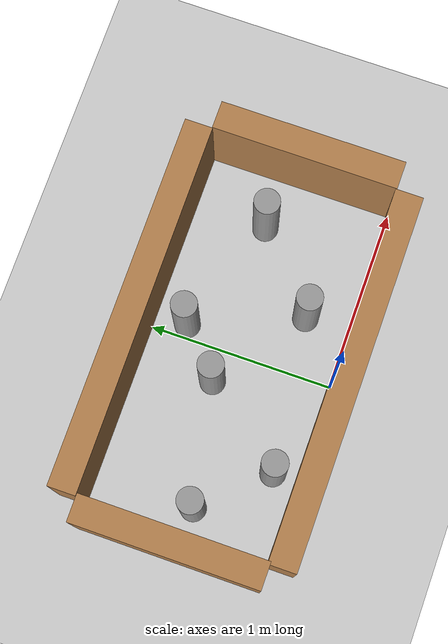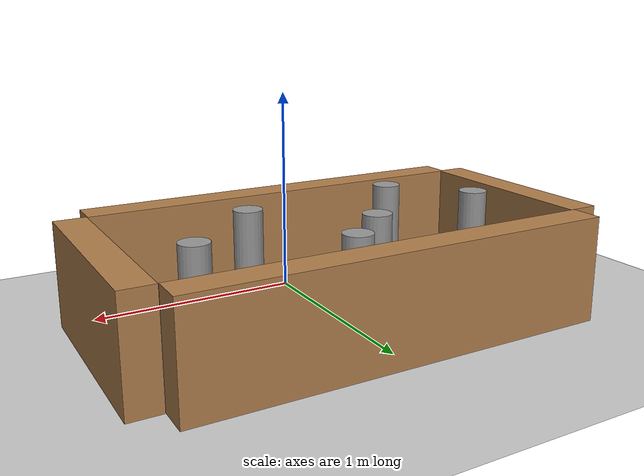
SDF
<sdf version="1.6">
 <world name="default">
  <light name="sun" type="directional">
   <pose>0 0 10 0 -0 0</pose>
   <diffuse>0.8 0.8 0.8 1</diffuse>
   <specular>0.1 0.1 0.1 1</specular>
   <attenuation>
    <range>1000</range>
    <constant>0.9</constant>
    <linear>0.01</linear>
    <quadratic>0.001</quadratic>
   </attenuation>
   <direction>-0.5 0.5 -1</direction>
  </light>
  <model name="ground_plane">
   <static>1</static>
   <link name="link">
    <collision name="collision">
     <geometry><plane><normal>0 0 1</normal><size>100 100</size></plane></geometry>
     <surface><friction><ode><mu>100</mu><mu2>50</mu2></ode></friction></surface>
    </collision>
    <visual name="visual">
     <cast_shadows>0</cast_shadows>
     <geometry><plane><normal>0 0 1</normal><size>100 100</size></plane></geometry>
     <material>
      <script><uri>file://media/materials/scripts/gazebo.material</uri><name>Gazebo/Grey</name></script>
     </material>
    </visual>
   </link>
  </model>
  <physics name="default_physics" default="0" type="ode">
   <real_time_update_rate>1000</real_time_update_rate>
   <max_step_size>0.001</max_step_size>
   <real_time_factor>1</real_time_factor>
   <ode>
    <solver>
     <type>quick</type>
     <iters>150</iters>
     <precon_iters>0</precon_iters>
     <sor>1.4</sor>
     <use_dynamic_moi_rescaling>1</use_dynamic_moi_rescaling>
    </solver>
    <constraints>
     <cfm>1e-05</cfm>
     <erp>0.2</erp>
     <contact_max_correcting_vel>2000</contact_max_correcting_vel>
     <contact_surface_layer>0.01</contact_surface_layer>
    </constraints>
   </ode>
  </physics>
  <scene><ambient>0.4 0.4 0.4 1</ambient><background>0.7 0.7 0.7 1</background><shadows>1</shadows></scene>
  <gravity>0 0 -9.8</gravity>
  <magnetic_field>6e-06 2.3e-05 -4.2e-05</magnetic_field>
  <atmosphere type="adiabatic"/>
  <spherical_coordinates>
   <surface_model>EARTH_WGS84</surface_model>
   <latitude_deg>0</latitude_deg>
   <longitude_deg>0</longitude_deg>
   <elevation>0</elevation>
   <heading_deg>0</heading_deg>
  </spherical_coordinates>
  <model name="turtlebot3_square_0">
   <link name="Wall_0">
    <pose>-0.004631 1.07537 0 0 -0 0</pose>
    <inertial>
     <mass>1</mass>
     <inertia><ixx>1</ixx><ixy>0</ixy><ixz>0</ixz><iyy>1</iyy><iyz>0</iyz><izz>1</izz></inertia>
    </inertial>
    <visual name="Wall_0_Visual">
     <pose>0 0 0.25 0 -0 0</pose>
     <geometry><box><size>2 0.15 0.5</size></box></geometry>
     <material>
      <script><uri>file://media/materials/scripts/gazebo.material</uri><name>Gazebo/Wood</name></script>
      <ambient>1 1 1 1</ambient>
      <diffuse>1 1 1 1</diffuse>
      <specular>0.2 0.2 0.2 1</specular>
      <emissive>0 0 0 1</emissive>
      <shader type="vertex"><normal_map>__default__</normal_map></shader>
     </material>
    </visual>
    <collision name="Wall_0_Collision">
     <pose>0 0 0.25 0 -0 0</pose>
     <geometry><box><size>2 0.15 0.5</size></box></geometry>
     <surface>
      <friction>
       <ode><mu>1</mu><mu2>1</mu2><fdir1>0 0 0</fdir1><slip1>0</slip1><slip2>0</slip2></ode>
       <torsional>
        <coefficient>1</coefficient>
        <patch_radius>0</patch_radius>
        <surface_radius>0</surface_radius>
        <use_patch_radius>1</use_patch_radius>
        <ode><slip>0</slip></ode>
       </torsional>
      </friction>
      <bounce><restitution_coefficient>0</restitution_coefficient><threshold>1e+06</threshold></bounce>
      <contact>
       <collide_without_contact>0</collide_without_contact>
       <collide_without_contact_bitmask>1</collide_without_contact_bitmask>
       <collide_bitmask>1</collide_bitmask>
       <ode>
        <soft_cfm>0</soft_cfm>
        <soft_erp>0.2</soft_erp>
        <kp>1e+13</kp>
        <kd>1</kd>
        <max_vel>0.01</max_vel>
        <min_depth>0</min_depth>
       </ode>
       <bullet>
        <split_impulse>1</split_impulse>
        <split_impulse_penetration_threshold>-0.01</split_impulse_penetration_threshold>
        <soft_cfm>0</soft_cfm>
        <soft_erp>0.2</soft_erp>
        <kp>1e+13</kp>
        <kd>1</kd>
       </bullet>
      </contact>
     </surface>
    </collision>
   </link>
   <link name="Wall_2">
    <pose>-1.06231 0.49864 0 0 0 -1.5708</pose>
    <inertial>
     <mass>1</mass>
     <inertia><ixx>1</ixx><ixy>0</ixy><ixz>0</ixz><iyy>1</iyy><iyz>0</iyz><izz>1</izz></inertia>
    </inertial>
    <visual name="Wall_2_Visual">
     <pose>0 0 0.25 0 -0 0</pose>
     <geometry><box><size>1 0.15 0.5</size></box></geometry>
     <material>
      <script><uri>file://media/materials/scripts/gazebo.material</uri><name>Gazebo/Wood</name></script>
      <ambient>1 1 1 1</ambient>
      <diffuse>1 1 1 1</diffuse>
      <specular>0.2 0.2 0.2 1</specular>
      <emissive>0 0 0 1</emissive>
      <shader type="vertex"><normal_map>__default__</normal_map></shader>
     </material>
    </visual>
    <collision name="Wall_2_Collision">
     <pose>0 0 0.25 0 -0 0</pose>
     <geometry><box><size>1 0.15 0.5</size></box></geometry>
     <surface>
      <friction>
       <ode><mu>1</mu><mu2>1</mu2><fdir1>0 0 0</fdir1><slip1>0</slip1><slip2>0</slip2></ode>
       <torsional>
        <coefficient>1</coefficient>
        <patch_radius>0</patch_radius>
        <surface_radius>0</surface_radius>
        <use_patch_radius>1</use_patch_radius>
        <ode><slip>0</slip></ode>
       </torsional>
      </friction>
      <bounce><restitution_coefficient>0</restitution_coefficient><threshold>1e+06</threshold></bounce>
      <contact>
       <collide_without_contact>0</collide_without_contact>
       <collide_without_contact_bitmask>1</collide_without_contact_bitmask>
       <collide_bitmask>1</collide_bitmask>
       <ode>
        <soft_cfm>0</soft_cfm>
        <soft_erp>0.2</soft_erp>
        <kp>1e+13</kp>
        <kd>1</kd>
        <max_vel>0.01</max_vel>
        <min_depth>0</min_depth>
       </ode>
       <bullet>
        <split_impulse>1</split_impulse>
        <split_impulse_penetration_threshold>-0.01</split_impulse_penetration_threshold>
        <soft_cfm>0</soft_cfm>
        <soft_erp>0.2</soft_erp>
        <kp>1e+13</kp>
        <kd>1</kd>
       </bullet>
      </contact>
     </surface>
    </collision>
   </link>
   <link name="Wall_3">
    <pose>-0.005226 -0.063377 0 0 -0 0</pose>
    <inertial>
     <mass>1</mass>
     <inertia><ixx>1</ixx><ixy>0</ixy><ixz>0</ixz><iyy>1</iyy><iyz>0</iyz><izz>1</izz></inertia>
    </inertial>
    <visual name="Wall_3_Visual">
     <pose>0 0 0.25 0 -0 0</pose>
     <geometry><box><size>2 0.15 0.5</size></box></geometry>
     <material>
      <script><uri>file://media/materials/scripts/gazebo.material</uri><name>Gazebo/Wood</name></script>
      <ambient>1 1 1 1</ambient>
      <diffuse>1 1 1 1</diffuse>
      <specular>0.2 0.2 0.2 1</specular>
      <emissive>0 0 0 1</emissive>
      <shader type="vertex"><normal_map>__default__</normal_map></shader>
     </material>
    </visual>
    <collision name="Wall_3_Collision">
     <pose>0 0 0.25 0 -0 0</pose>
     <geometry><box><size>2 0.15 0.5</size></box></geometry>
     <surface>
      <friction>
       <ode><mu>1</mu><mu2>1</mu2><fdir1>0 0 0</fdir1><slip1>0</slip1><slip2>0</slip2></ode>
       <torsional>
        <coefficient>1</coefficient>
        <patch_radius>0</patch_radius>
        <surface_radius>0</surface_radius>
        <use_patch_radius>1</use_patch_radius>
        <ode><slip>0</slip></ode>
       </torsional>
      </friction>
      <bounce><restitution_coefficient>0</restitution_coefficient><threshold>1e+06</threshold></bounce>
      <contact>
       <collide_without_contact>0</collide_without_contact>
       <collide_without_contact_bitmask>1</collide_without_contact_bitmask>
       <collide_bitmask>1</collide_bitmask>
       <ode>
        <soft_cfm>0</soft_cfm>
        <soft_erp>0.2</soft_erp>
        <kp>1e+13</kp>
        <kd>1</kd>
        <max_vel>0.01</max_vel>
        <min_depth>0</min_depth>
       </ode>
       <bullet>
        <split_impulse>1</split_impulse>
        <split_impulse_penetration_threshold>-0.01</split_impulse_penetration_threshold>
        <soft_cfm>0</soft_cfm>
        <soft_erp>0.2</soft_erp>
        <kp>1e+13</kp>
        <kd>1</kd>
       </bullet>
      </contact>
     </surface>
    </collision>
   </link>
   <link name="Wall_4">
    <pose>1.0729 0.503947 0 0 -0 1.5708</pose>
    <inertial>
     <mass>1</mass>
     <inertia><ixx>1</ixx><ixy>0</ixy><ixz>0</ixz><iyy>1</iyy><iyz>0</iyz><izz>1</izz></inertia>
    </inertial>
    <visual name="Wall_4_Visual">
     <pose>0 0 0.25 0 -0 0</pose>
     <geometry><box><size>1 0.15 0.5</size></box></geometry>
     <material>
      <script><uri>file://media/materials/scripts/gazebo.material</uri><name>Gazebo/Wood</name></script>
      <ambient>1 1 1 1</ambient>
      <diffuse>1 1 1 1</diffuse>
      <specular>0.2 0.2 0.2 1</specular>
      <emissive>0 0 0 1</emissive>
      <shader type="vertex"><normal_map>__default__</normal_map></shader>
     </material>
    </visual>
    <collision name="Wall_4_Collision">
     <pose>0 0 0.25 0 -0 0</pose>
     <geometry><box><size>1 0.15 0.5</size></box></geometry>
     <surface>
      <friction>
       <ode><mu>1</mu><mu2>1</mu2><fdir1>0 0 0</fdir1><slip1>0</slip1><slip2>0</slip2></ode>
       <torsional>
        <coefficient>1</coefficient>
        <patch_radius>0</patch_radius>
        <surface_radius>0</surface_radius>
        <use_patch_radius>1</use_patch_radius>
        <ode><slip>0</slip></ode>
       </torsional>
      </friction>
      <bounce><restitution_coefficient>0</restitution_coefficient><threshold>1e+06</threshold></bounce>
      <contact>
       <collide_without_contact>0</collide_without_contact>
       <collide_without_contact_bitmask>1</collide_without_contact_bitmask>
       <collide_bitmask>1</collide_bitmask>
       <ode>
        <soft_cfm>0</soft_cfm>
        <soft_erp>0.2</soft_erp>
        <kp>1e+13</kp>
        <kd>1</kd>
        <max_vel>0.01</max_vel>
        <min_depth>0</min_depth>
       </ode>
       <bullet>
        <split_impulse>1</split_impulse>
        <split_impulse_penetration_threshold>-0.01</split_impulse_penetration_threshold>
        <soft_cfm>0</soft_cfm>
        <soft_erp>0.2</soft_erp>
        <kp>1e+13</kp>
        <kd>1</kd>
       </bullet>
      </contact>
     </surface>
    </collision>
   </link>
   <static>1</static>
  </model>
  <model name="unit_cylinder_0_0">
   <link name="link">
    <pose>-0.579199 -1.40579 -0.254355 0 -0 0</pose>
    <inertial>
     <mass>1</mass>
     <inertia><ixx>0.145833</ixx><ixy>0</ixy><ixz>0</ixz><iyy>0.145833</iyy><iyz>0</iyz><izz>0.125</izz></inertia>
    </inertial>
    <visual name="visual">
     <geometry><cylinder><radius>0.07</radius><length>0.5</length></cylinder></geometry>
     <material>
      <script><name>Gazebo/Grey</name><uri>file://media/materials/scripts/gazebo.material</uri></script>
      <ambient>0.3 0.3 0.3 1</ambient>
      <diffuse>0.7 0.7 0.7 1</diffuse>
      <specular>0.01 0.01 0.01 1</specular>
      <emissive>0 0 0 1</emissive>
      <shader type="vertex"><normal_map>__default__</normal_map></shader>
     </material>
    </visual>
    <collision name="collision">
     <geometry><cylinder><radius>0.07</radius><length>0.5</length></cylinder></geometry>
     <surface>
      <friction>
       <ode><mu>1</mu><mu2>1</mu2><fdir1>0 0 0</fdir1><slip1>0</slip1><slip2>0</slip2></ode>
       <torsional>
        <coefficient>1</coefficient>
        <patch_radius>0</patch_radius>
        <surface_radius>0</surface_radius>
        <use_patch_radius>1</use_patch_radius>
        <ode><slip>0</slip></ode>
       </torsional>
      </friction>
      <bounce><restitution_coefficient>0</restitution_coefficient><threshold>1e+06</threshold></bounce>
      <contact>
       <collide_without_contact>0</collide_without_contact>
       <collide_without_contact_bitmask>1</collide_without_contact_bitmask>
       <collide_bitmask>1</collide_bitmask>
       <ode>
        <soft_cfm>0</soft_cfm>
        <soft_erp>0.2</soft_erp>
        <kp>1e+13</kp>
        <kd>1</kd>
        <max_vel>0.01</max_vel>
        <min_depth>0</min_depth>
       </ode>
       <bullet>
        <split_impulse>1</split_impulse>
        <split_impulse_penetration_threshold>-0.01</split_impulse_penetration_threshold>
        <soft_cfm>0</soft_cfm>
        <soft_erp>0.2</soft_erp>
        <kp>1e+13</kp>
        <kd>1</kd>
       </bullet>
      </contact>
     </surface>
    </collision>
   </link>
   <link name="link_clone">
    <pose>-0.092564 -1.76127 -0.253571 0 -0 0</pose>
    <inertial>
     <mass>1</mass>
     <inertia><ixx>0.145833</ixx><ixy>0</ixy><ixz>0</ixz><iyy>0.145833</iyy><iyz>0</iyz><izz>0.125</izz></inertia>
    </inertial>
    <visual name="visual">
     <geometry><cylinder><radius>0.07</radius><length>0.5</length></cylinder></geometry>
     <material>
      <script><name>Gazebo/Grey</name><uri>file://media/materials/scripts/gazebo.material</uri></script>
      <ambient>0.3 0.3 0.3 1</ambient>
      <diffuse>0.7 0.7 0.7 1</diffuse>
      <specular>0.01 0.01 0.01 1</specular>
      <emissive>0 0 0 1</emissive>
      <shader type="vertex"><normal_map>__default__</normal_map></shader>
     </material>
    </visual>
    <collision name="collision">
     <geometry><cylinder><radius>0.07</radius><length>0.5</length></cylinder></geometry>
     <surface>
      <friction>
       <ode><mu>1</mu><mu2>1</mu2><fdir1>0 0 0</fdir1><slip1>0</slip1><slip2>0</slip2></ode>
       <torsional>
        <coefficient>1</coefficient>
        <patch_radius>0</patch_radius>
        <surface_radius>0</surface_radius>
        <use_patch_radius>1</use_patch_radius>
        <ode><slip>0</slip></ode>
       </torsional>
      </friction>
      <bounce><restitution_coefficient>0</restitution_coefficient><threshold>1e+06</threshold></bounce>
      <contact>
       <collide_without_contact>0</collide_without_contact>
       <collide_without_contact_bitmask>1</collide_without_contact_bitmask>
       <collide_bitmask>1</collide_bitmask>
       <ode>
        <soft_cfm>0</soft_cfm>
        <soft_erp>0.2</soft_erp>
        <kp>1e+13</kp>
        <kd>1</kd>
        <max_vel>0.01</max_vel>
        <min_depth>0</min_depth>
       </ode>
       <bullet>
        <split_impulse>1</split_impulse>
        <split_impulse_penetration_threshold>-0.01</split_impulse_penetration_threshold>
        <soft_cfm>0</soft_cfm>
        <soft_erp>0.2</soft_erp>
        <kp>1e+13</kp>
        <kd>1</kd>
       </bullet>
      </contact>
     </surface>
    </collision>
   </link>
   <link name="link_clone_clone">
    <pose>-0.937385 -1.86708 -0.25279 0 -0 0</pose>
    <inertial>
     <mass>1</mass>
     <inertia><ixx>0.145833</ixx><ixy>0</ixy><ixz>0</ixz><iyy>0.145833</iyy><iyz>0</iyz><izz>0.125</izz></inertia>
    </inertial>
    <visual name="visual">
     <geometry><cylinder><radius>0.07</radius><length>0.5</length></cylinder></geometry>
     <material>
      <script><name>Gazebo/Grey</name><uri>file://media/materials/scripts/gazebo.material</uri></script>
      <ambient>0.3 0.3 0.3 1</ambient>
      <diffuse>0.7 0.7 0.7 1</diffuse>
      <specular>0.01 0.01 0.01 1</specular>
      <emissive>0 0 0 1</emissive>
      <shader type="vertex"><normal_map>__default__</normal_map></shader>
     </material>
    </visual>
    <collision name="collision">
     <geometry><cylinder><radius>0.07</radius><length>0.5</length></cylinder></geometry>
     <surface>
      <friction>
       <ode><mu>1</mu><mu2>1</mu2><fdir1>0 0 0</fdir1><slip1>0</slip1><slip2>0</slip2></ode>
       <torsional>
        <coefficient>1</coefficient>
        <patch_radius>0</patch_radius>
        <surface_radius>0</surface_radius>
        <use_patch_radius>1</use_patch_radius>
        <ode><slip>0</slip></ode>
       </torsional>
      </friction>
      <bounce><restitution_coefficient>0</restitution_coefficient><threshold>1e+06</threshold></bounce>
      <contact>
       <collide_without_contact>0</collide_without_contact>
       <collide_without_contact_bitmask>1</collide_without_contact_bitmask>
       <collide_bitmask>1</collide_bitmask>
       <ode>
        <soft_cfm>0</soft_cfm>
        <soft_erp>0.2</soft_erp>
        <kp>1e+13</kp>
        <kd>1</kd>
        <max_vel>0.01</max_vel>
        <min_depth>0</min_depth>
       </ode>
       <bullet>
        <split_impulse>1</split_impulse>
        <split_impulse_penetration_threshold>-0.01</split_impulse_penetration_threshold>
        <soft_cfm>0</soft_cfm>
        <soft_erp>0.2</soft_erp>
        <kp>1e+13</kp>
        <kd>1</kd>
       </bullet>
      </contact>
     </surface>
    </collision>
   </link>
   <link name="link_clone_clone_0">
    <pose>0.31093 -1.39506 -0.253571 0 -0 0</pose>
    <inertial>
     <mass>1</mass>
     <inertia><ixx>0.145833</ixx><ixy>0</ixy><ixz>0</ixz><iyy>0.145833</iyy><iyz>0</iyz><izz>0.125</izz></inertia>
    </inertial>
    <visual name="visual">
     <geometry><cylinder><radius>0.07</radius><length>0.5</length></cylinder></geometry>
     <material>
      <script><name>Gazebo/Grey</name><uri>file://media/materials/scripts/gazebo.material</uri></script>
      <ambient>0.3 0.3 0.3 1</ambient>
      <diffuse>0.7 0.7 0.7 1</diffuse>
      <specular>0.01 0.01 0.01 1</specular>
      <emissive>0 0 0 1</emissive>
      <shader type="vertex"><normal_map>__default__</normal_map></shader>
     </material>
    </visual>
    <collision name="collision">
     <geometry><cylinder><radius>0.07</radius><length>0.5</length></cylinder></geometry>
     <surface>
      <friction>
       <ode><mu>1</mu><mu2>1</mu2><fdir1>0 0 0</fdir1><slip1>0</slip1><slip2>0</slip2></ode>
       <torsional>
        <coefficient>1</coefficient>
        <patch_radius>0</patch_radius>
        <surface_radius>0</surface_radius>
        <use_patch_radius>1</use_patch_radius>
        <ode><slip>0</slip></ode>
       </torsional>
      </friction>
      <bounce><restitution_coefficient>0</restitution_coefficient><threshold>1e+06</threshold></bounce>
      <contact>
       <collide_without_contact>0</collide_without_contact>
       <collide_without_contact_bitmask>1</collide_without_contact_bitmask>
       <collide_bitmask>1</collide_bitmask>
       <ode>
        <soft_cfm>0</soft_cfm>
        <soft_erp>0.2</soft_erp>
        <kp>1e+13</kp>
        <kd>1</kd>
        <max_vel>0.01</max_vel>
        <min_depth>0</min_depth>
       </ode>
       <bullet>
        <split_impulse>1</split_impulse>
        <split_impulse_penetration_threshold>-0.01</split_impulse_penetration_threshold>
        <soft_cfm>0</soft_cfm>
        <soft_erp>0.2</soft_erp>
        <kp>1e+13</kp>
        <kd>1</kd>
       </bullet>
      </contact>
     </surface>
    </collision>
   </link>
   <link name="link_clone_clone_0_clone_0">
    <pose>-1.24598 -1.53509 -0.253571 0 -0 0</pose>
    <inertial>
     <mass>1</mass>
     <inertia><ixx>0.145833</ixx><ixy>0</ixy><ixz>0</ixz><iyy>0.145833</iyy><iyz>0</iyz><izz>0.125</izz></inertia>
    </inertial>
    <visual name="visual">
     <geometry><cylinder><radius>0.07</radius><length>0.5</length></cylinder></geometry>
     <material>
      <script><name>Gazebo/Grey</name><uri>file://media/materials/scripts/gazebo.material</uri></script>
      <ambient>0.3 0.3 0.3 1</ambient>
      <diffuse>0.7 0.7 0.7 1</diffuse>
      <specular>0.01 0.01 0.01 1</specular>
      <emissive>0 0 0 1</emissive>
      <shader type="vertex"><normal_map>__default__</normal_map></shader>
     </material>
    </visual>
    <collision name="collision">
     <geometry><cylinder><radius>0.07</radius><length>0.5</length></cylinder></geometry>
     <surface>
      <friction>
       <ode><mu>1</mu><mu2>1</mu2><fdir1>0 0 0</fdir1><slip1>0</slip1><slip2>0</slip2></ode>
       <torsional>
        <coefficient>1</coefficient>
        <patch_radius>0</patch_radius>
        <surface_radius>0</surface_radius>
        <use_patch_radius>1</use_patch_radius>
        <ode><slip>0</slip></ode>
       </torsional>
      </friction>
      <bounce><restitution_coefficient>0</restitution_coefficient><threshold>1e+06</threshold></bounce>
      <contact>
       <collide_without_contact>0</collide_without_contact>
       <collide_without_contact_bitmask>1</collide_without_contact_bitmask>
       <collide_bitmask>1</collide_bitmask>
       <ode>
        <soft_cfm>0</soft_cfm>
        <soft_erp>0.2</soft_erp>
        <kp>1e+13</kp>
        <kd>1</kd>
        <max_vel>0.01</max_vel>
        <min_depth>0</min_depth>
       </ode>
       <bullet>
        <split_impulse>1</split_impulse>
        <split_impulse_penetration_threshold>-0.01</split_impulse_penetration_threshold>
        <soft_cfm>0</soft_cfm>
        <soft_erp>0.2</soft_erp>
        <kp>1e+13</kp>
        <kd>1</kd>
       </bullet>
      </contact>
     </surface>
    </collision>
   </link>
   <link name="link_clone_clone_0_clone_0_clone">
    <pose>-0.333175 -1.17625 -0.253571 0 -0 0</pose>
    <inertial>
     <mass>1</mass>
     <inertia><ixx>0.145833</ixx><ixy>0</ixy><ixz>0</ixz><iyy>0.145833</iyy><iyz>0</iyz><izz>0.125</izz></inertia>
    </inertial>
    <visual name="visual">
     <geometry><cylinder><radius>0.07</radius><length>0.5</length></cylinder></geometry>
     <material>
      <script><name>Gazebo/Grey</name><uri>file://media/materials/scripts/gazebo.material</uri></script>
      <ambient>0.3 0.3 0.3 1</ambient>
      <diffuse>0.7 0.7 0.7 1</diffuse>
      <specular>0.01 0.01 0.01 1</specular>
      <emissive>0 0 0 1</emissive>
      <shader type="vertex"><normal_map>__default__</normal_map></shader>
     </material>
    </visual>
    <collision name="collision">
     <geometry><cylinder><radius>0.07</radius><length>0.5</length></cylinder></geometry>
     <surface>
      <friction>
       <ode><mu>1</mu><mu2>1</mu2><fdir1>0 0 0</fdir1><slip1>0</slip1><slip2>0</slip2></ode>
       <torsional>
        <coefficient>1</coefficient>
        <patch_radius>0</patch_radius>
        <surface_radius>0</surface_radius>
        <use_patch_radius>1</use_patch_radius>
        <ode><slip>0</slip></ode>
       </torsional>
      </friction>
      <bounce><restitution_coefficient>0</restitution_coefficient><threshold>1e+06</threshold></bounce>
      <contact>
       <collide_without_contact>0</collide_without_contact>
       <collide_without_contact_bitmask>1</collide_without_contact_bitmask>
       <collide_bitmask>1</collide_bitmask>
       <ode>
        <soft_cfm>0</soft_cfm>
        <soft_erp>0.2</soft_erp>
        <kp>1e+13</kp>
        <kd>1</kd>
        <max_vel>0.01</max_vel>
        <min_depth>0</min_depth>
       </ode>
       <bullet>
        <split_impulse>1</split_impulse>
        <split_impulse_penetration_threshold>-0.01</split_impulse_penetration_threshold>
        <soft_cfm>0</soft_cfm>
        <soft_erp>0.2</soft_erp>
        <kp>1e+13</kp>
        <kd>1</kd>
       </bullet>
      </contact>
     </surface>
    </collision>
   </link>
   <static>0</static>
   <pose>0.405356 2.00266 0.504355 0 -0 1e-06</pose>
  </model>
 </world>
</sdf>
